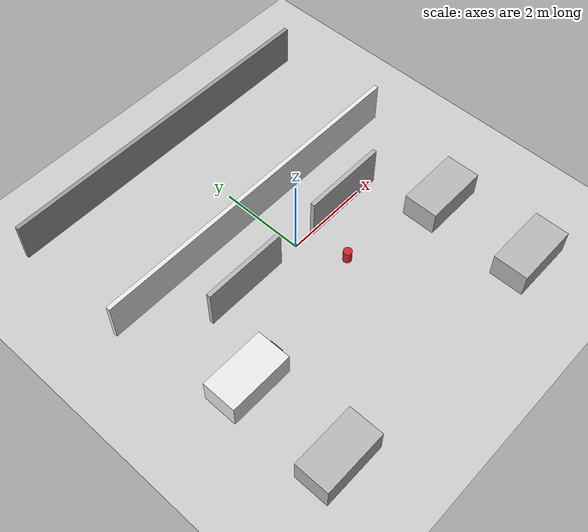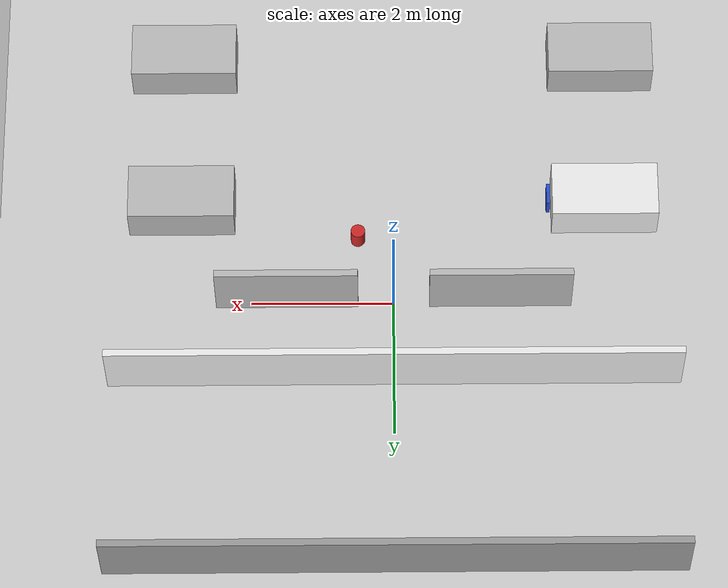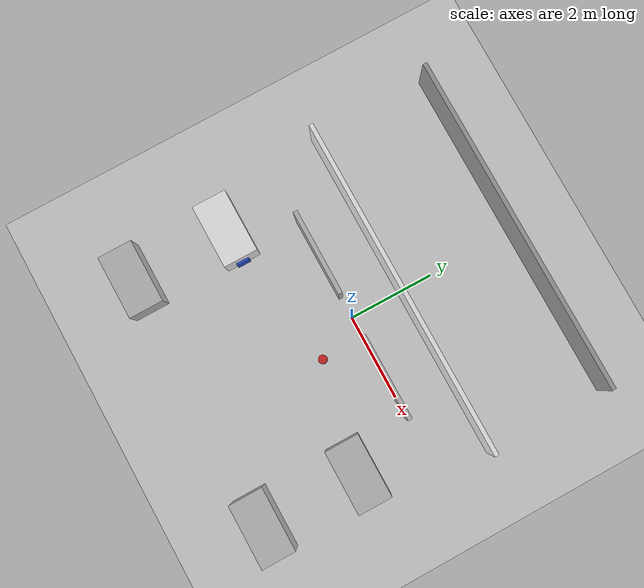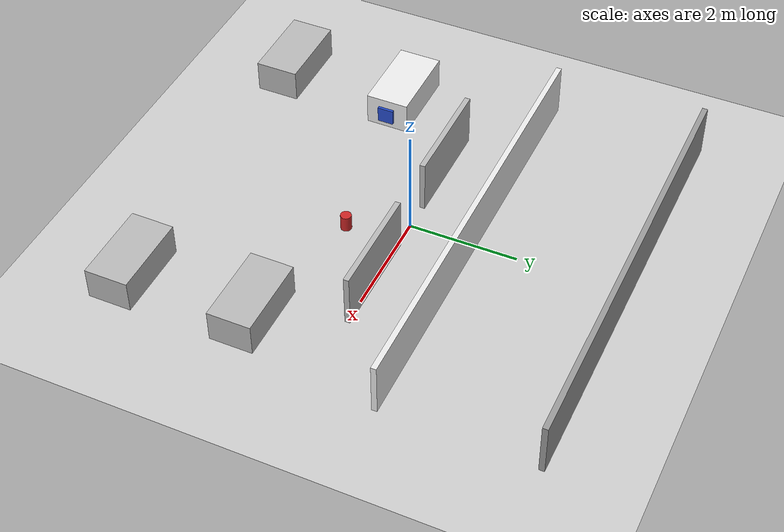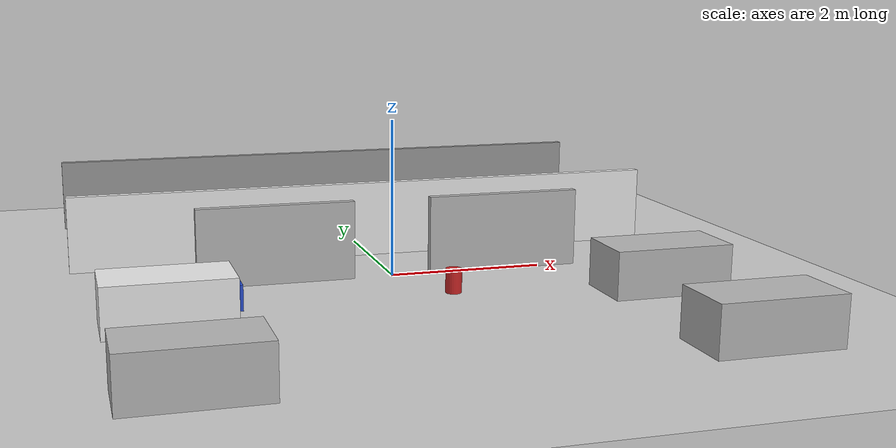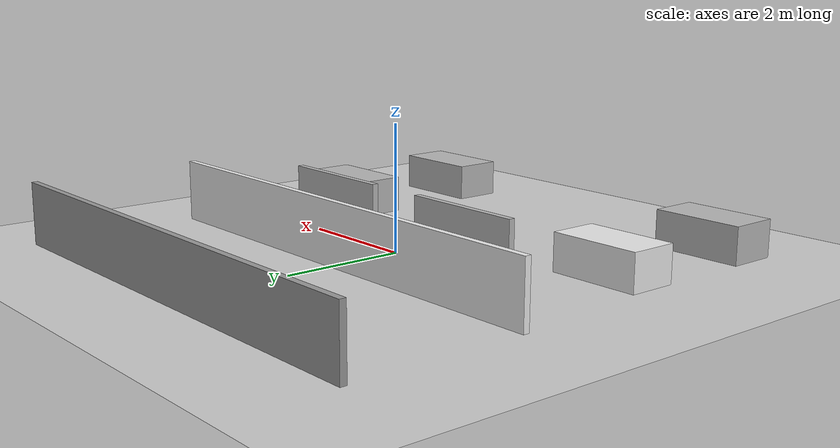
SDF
<?xml version="1.0" ?>
<sdf version="1.6">
  <world name="hospital_robotic_env">
    <include><uri>model://sun</uri></include>
    <include><uri>model://ground_plane</uri></include>

    <!-- [1] 외벽 및 간호사 스테이션 구역 (전체 맵 약 10m x 8m) -->
    <!-- 간호사 스테이션 벽면 -->
    <model name="nurse_station_wall">
      <pose>0 4.0 0.5 0 0 0</pose>
      <link name="link">
        <collision name="collision"><geometry><box><size>8.0 0.1 1.0</size></box></geometry></collision>
        <visual name="visual">
          <geometry><box><size>8.0 0.1 1.0</size></box></geometry>
          <material><script><name>Gazebo/Grey</name></script></material>
        </visual>
      </link>
      <static>true</static>
    </model>

    <!-- [2] 복도 (Hallway) 및 병실 입구 -->
    <!-- 복도 상단 벽 -->
    <model name="hallway_wall_top">
      <pose>0 1.2 0.5 0 0 0</pose>
      <link name="link">
        <collision name="collision"><geometry><box><size>8.0 0.1 1.0</size></box></geometry></collision>
        <visual name="visual">
          <geometry><box><size>8.0 0.1 1.0</size></box></geometry>
          <material><script><name>Gazebo/White</name></script></material>
        </visual>
      </link>
      <static>true</static>
    </model>

    <!-- 병실 입구 문 (폭 1.2m 비워둠) -->
    <model name="room_door_left">
      <pose>-1.5 0 0.5 0 0 0</pose>
      <link name="link">
        <collision name="collision"><geometry><box><size>2.0 0.1 1.0</size></box></geometry></collision>
        <visual name="visual"><geometry><box><size>2.0 0.1 1.0</size></box></geometry></visual>
      </link>
      <static>true</static>
    </model>
    <model name="room_door_right">
      <pose>1.5 0 0.5 0 0 0</pose>
      <link name="link">
        <collision name="collision"><geometry><box><size>2.0 0.1 1.0</size></box></geometry></collision>
        <visual name="visual"><geometry><box><size>2.0 0.1 1.0</size></box></geometry></visual>
      </link>
      <static>true</static>
    </model>

    <!-- [3] 4인실 병실 내부 (양쪽 침대 배치) -->
    <!-- 왼쪽 벽 침대 1 (Bed 1) -->
    <model name="bed_1">
      <pose>-3.0 -1.5 0.3 0 0 0</pose>
      <link name="link">
        <collision name="collision"><geometry><box><size>1.5 0.8 0.6</size></box></geometry></collision>
        <visual name="visual">
          <geometry><box><size>1.5 0.8 0.6</size></box></geometry>
          <material><script><name>Gazebo/White</name></script></material>
        </visual>
      </link>
      <static>true</static>
    </model>
    <!-- Bed 1용 도킹 마커 (파란색) -->
    <model name="marker_1">
      <pose>-2.2 -1.5 0.3 0 0 0</pose>
      <link name="link">
        <visual name="visual">
          <geometry><box><size>0.05 0.3 0.3</size></box></geometry>
          <material><script><name>Gazebo/Blue</name></script></material>
        </visual>
      </link>
      <static>true</static>
    </model>

    <!-- 왼쪽 벽 침대 3 (Bed 3) - 간격 1.5m 유지 -->
    <model name="bed_3">
      <pose>-3.0 -3.8 0.3 0 0 0</pose>
      <link name="link">
        <collision name="collision"><geometry><box><size>1.5 0.8 0.6</size></box></geometry></collision>
        <visual name="visual"><geometry><box><size>1.5 0.8 0.6</size></box></geometry></visual>
      </link>
      <static>true</static>
    </model>

    <!-- 오른쪽 벽 침대 2 (Bed 2) -->
    <model name="bed_2">
      <pose>3.0 -1.5 0.3 0 0 0</pose>
      <link name="link">
        <collision name="collision"><geometry><box><size>1.5 0.8 0.6</size></box></geometry></collision>
        <visual name="visual"><geometry><box><size>1.5 0.8 0.6</size></box></geometry></visual>
      </link>
      <static>true</static>
    </model>

    <!-- 오른쪽 벽 침대 4 (Bed 4) - 간격 1.5m 유지 -->
    <model name="bed_4">
      <pose>3.0 -3.8 0.3 0 0 0</pose>
      <link name="link">
        <collision name="collision"><geometry><box><size>1.5 0.8 0.6</size></box></geometry></collision>
        <visual name="visual"><geometry><box><size>1.5 0.8 0.6</size></box></geometry></visual>
      </link>
      <static>true</static>
    </model>

    <!-- [4] 시나리오 2용 하단 장애물 (라이다 사각지대용) -->
    <model name="low_obstacle_1">
      <pose>0.5 -1.0 0.15 0 0 0</pose> <!-- 복도 진입로 근처 -->
      <link name="link">
        <collision name="collision"><geometry><cylinder><radius>0.1</radius><length>0.3</length></cylinder></geometry></collision>
        <visual name="visual">
          <geometry><cylinder><radius>0.1</radius><length>0.3</length></cylinder></geometry>
          <material><script><name>Gazebo/Red</name></script></material>
        </visual>
      </link>
      <static>true</static>
    </model>

  </world>
</sdf>
